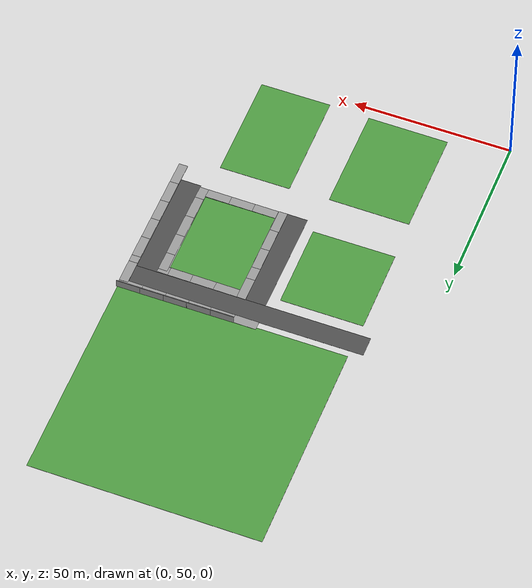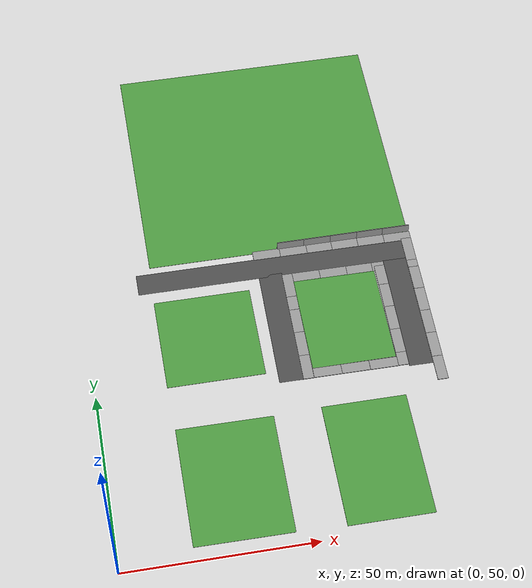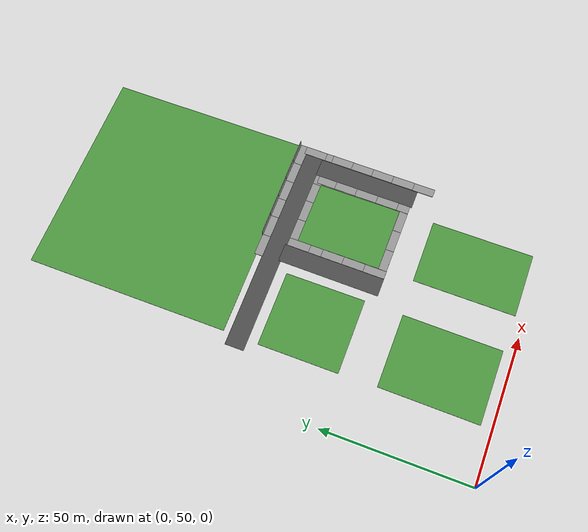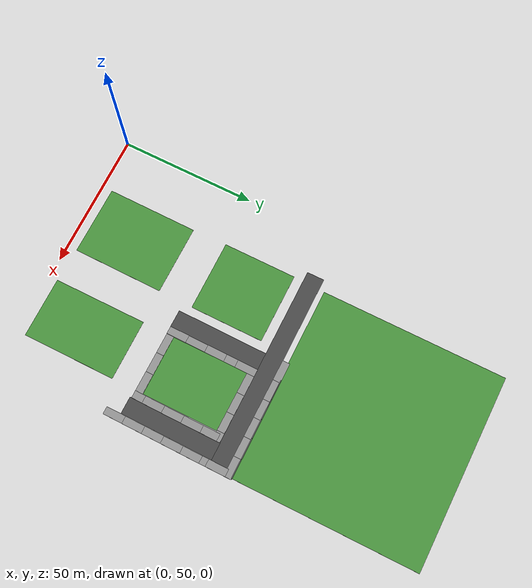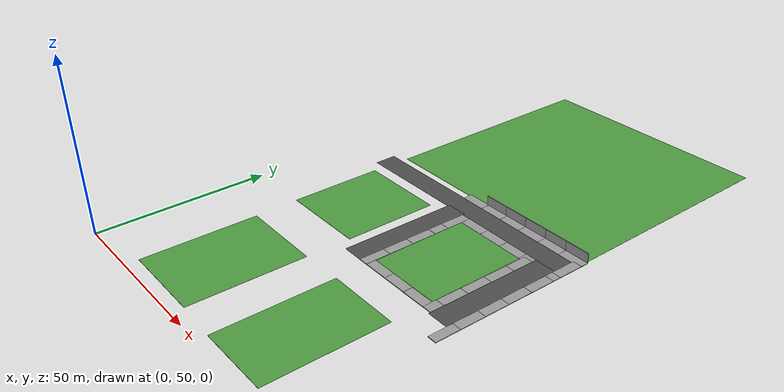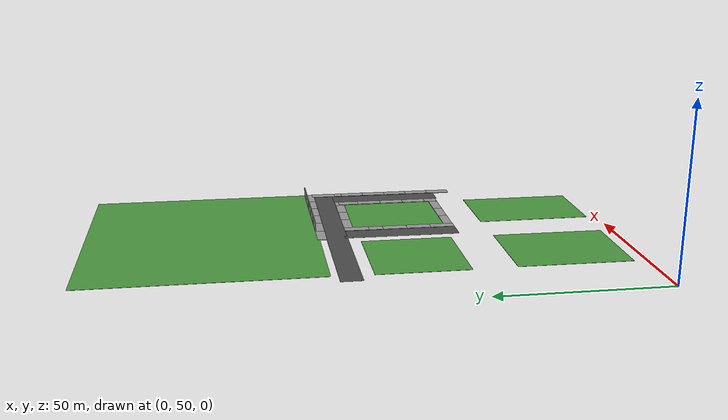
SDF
<sdf version="1.6">
 <world name="default">
  <model name="grey_wall_clone_clone_9_clone_26_clone_0_clone_2_clone_4_clone">
   <static>1</static>
   <link name="link">
    <pose>0 0 1.4 0 -0 0</pose>
    <collision name="collision"><geometry><box><size>7.5 0.2 2.8</size></box></geometry></collision>
    <visual name="visual">
     <cast_shadows>0</cast_shadows>
     <geometry><box><size>7.5 0.2 2.8</size></box></geometry>
     <material>
      <script>
       <uri>model://grey_wall/materials/scripts</uri>
       <uri>model://grey_wall/materials/textures</uri>
       <name>vrc/grey_wall</name>
      </script>
     </material>
    </visual>
   </link>
   <pose>91.2568 94.3054 -0.017166 -1.57343 0.001892 1.56332</pose>
  </model>
  <model name="grey_wall_clone_clone_9_clone_26_clone_0_clone_2_clone_4_clone_0">
   <static>1</static>
   <link name="link">
    <pose>0 0 1.4 0 -0 0</pose>
    <collision name="collision"><geometry><box><size>7.5 0.2 2.8</size></box></geometry></collision>
    <visual name="visual">
     <cast_shadows>0</cast_shadows>
     <geometry><box><size>7.5 0.2 2.8</size></box></geometry>
     <material>
      <script>
       <uri>model://grey_wall/materials/scripts</uri>
       <uri>model://grey_wall/materials/textures</uri>
       <name>vrc/grey_wall</name>
      </script>
     </material>
    </visual>
   </link>
   <pose>91.3338 101.558 -0.017166 -1.57343 0.001892 1.56332</pose>
  </model>
  <model name="grey_wall_clone_clone_9_clone_26_clone_0_clone_2_clone_4_clone_1">
   <static>1</static>
   <link name="link">
    <pose>0 0 1.4 0 -0 0</pose>
    <collision name="collision"><geometry><box><size>7.5 0.2 2.8</size></box></geometry></collision>
    <visual name="visual">
     <cast_shadows>0</cast_shadows>
     <geometry><box><size>7.5 0.2 2.8</size></box></geometry>
     <material>
      <script>
       <uri>model://grey_wall/materials/scripts</uri>
       <uri>model://grey_wall/materials/textures</uri>
       <name>vrc/grey_wall</name>
      </script>
     </material>
    </visual>
   </link>
   <pose>91.3954 109.062 -0.017166 -1.57343 0.001892 1.56332</pose>
  </model>
  <model name="grey_wall_clone_clone_9_clone_26_clone_0_clone_2_clone_4_clone_2">
   <static>1</static>
   <link name="link">
    <pose>0 0 1.4 0 -0 0</pose>
    <collision name="collision"><geometry><box><size>7.5 0.2 2.8</size></box></geometry></collision>
    <visual name="visual">
     <cast_shadows>0</cast_shadows>
     <geometry><box><size>7.5 0.2 2.8</size></box></geometry>
     <material>
      <script>
       <uri>model://grey_wall/materials/scripts</uri>
       <uri>model://grey_wall/materials/textures</uri>
       <name>vrc/grey_wall</name>
      </script>
     </material>
    </visual>
   </link>
   <pose>91.4675 116.368 -0.017166 -1.57343 0.001892 1.56332</pose>
  </model>
  <model name="grey_wall_clone_clone_9_clone_26_clone_0_clone_2_clone_4_clone_3">
   <static>1</static>
   <link name="link">
    <pose>0 0 1.4 0 -0 0</pose>
    <collision name="collision"><geometry><box><size>7.5 0.2 2.8</size></box></geometry></collision>
    <visual name="visual">
     <cast_shadows>0</cast_shadows>
     <geometry><box><size>7.5 0.2 2.8</size></box></geometry>
     <material>
      <script>
       <uri>model://grey_wall/materials/scripts</uri>
       <uri>model://grey_wall/materials/textures</uri>
       <name>vrc/grey_wall</name>
      </script>
     </material>
    </visual>
   </link>
   <pose>91.5501 123.729 -0.017166 -1.57343 0.001892 1.56332</pose>
  </model>
  <model name="grey_wall_clone_clone_9_clone_26_clone_0_clone_2_clone_4_clone_4">
   <static>1</static>
   <link name="link">
    <pose>0 0 1.4 0 -0 0</pose>
    <collision name="collision"><geometry><box><size>7.5 0.2 2.8</size></box></geometry></collision>
    <visual name="visual">
     <cast_shadows>0</cast_shadows>
     <geometry><box><size>7.5 0.2 2.8</size></box></geometry>
     <material>
      <script>
       <uri>model://grey_wall/materials/scripts</uri>
       <uri>model://grey_wall/materials/textures</uri>
       <name>vrc/grey_wall</name>
      </script>
     </material>
    </visual>
   </link>
   <pose>91.5755 131.004 -0.017166 -1.57343 0.001892 1.56332</pose>
  </model>
  <model name="grey_wall_clone_clone_9_clone_26_clone_0_clone_2_clone_4_clone_5">
   <static>1</static>
   <link name="link">
    <pose>0 0 1.4 0 -0 0</pose>
    <collision name="collision"><geometry><box><size>7.5 0.2 2.8</size></box></geometry></collision>
    <visual name="visual">
     <cast_shadows>0</cast_shadows>
     <geometry><box><size>7.5 0.2 2.8</size></box></geometry>
     <material>
      <script>
       <uri>model://grey_wall/materials/scripts</uri>
       <uri>model://grey_wall/materials/textures</uri>
       <name>vrc/grey_wall</name>
      </script>
     </material>
    </visual>
   </link>
   <pose>91.588 133.388 -0.017187 -1.57343 0.001892 1.56332</pose>
  </model>
  <model name="grey_wall_clone_clone_9_clone_26_clone_0_clone_2_clone_4_clone_2_clone_9">
   <static>1</static>
   <link name="link">
    <pose>0 0 1.4 0 -0 0</pose>
    <collision name="collision"><geometry><box><size>7.5 0.2 2.8</size></box></geometry></collision>
    <visual name="visual">
     <cast_shadows>0</cast_shadows>
     <geometry><box><size>7.5 0.2 2.8</size></box></geometry>
     <material>
      <script>
       <uri>model://grey_wall/materials/scripts</uri>
       <uri>model://grey_wall/materials/textures</uri>
       <name>vrc/grey_wall</name>
      </script>
     </material>
    </visual>
   </link>
   <pose>82.3459 126.61 -0.017166 -1.57343 0.001892 1.56332</pose>
  </model>
  <model name="grey_wall_clone_clone_9_clone_26_clone_0_clone_2_clone_4_clone_2_clone_10">
   <static>1</static>
   <link name="link">
    <pose>0 0 1.4 0 -0 0</pose>
    <collision name="collision"><geometry><box><size>7.5 0.2 2.8</size></box></geometry></collision>
    <visual name="visual">
     <cast_shadows>0</cast_shadows>
     <geometry><box><size>7.5 0.2 2.8</size></box></geometry>
     <material>
      <script>
       <uri>model://grey_wall/materials/scripts</uri>
       <uri>model://grey_wall/materials/textures</uri>
       <name>vrc/grey_wall</name>
      </script>
     </material>
    </visual>
   </link>
   <pose>82.3013 119.227 -0.017166 -1.57343 0.001892 1.56332</pose>
  </model>
  <model name="grey_wall_clone_clone_9_clone_26_clone_0_clone_2_clone_4_clone_2_clone_11">
   <static>1</static>
   <link name="link">
    <pose>0 0 1.4 0 -0 0</pose>
    <collision name="collision"><geometry><box><size>7.5 0.2 2.8</size></box></geometry></collision>
    <visual name="visual">
     <cast_shadows>0</cast_shadows>
     <geometry><box><size>7.5 0.2 2.8</size></box></geometry>
     <material>
      <script>
       <uri>model://grey_wall/materials/scripts</uri>
       <uri>model://grey_wall/materials/textures</uri>
       <name>vrc/grey_wall</name>
      </script>
     </material>
    </visual>
   </link>
   <pose>82.2316 111.762 -0.017166 -1.57343 0.001892 1.56332</pose>
  </model>
  <model name="grey_wall_clone_clone_9_clone_26_clone_0_clone_2_clone_4_clone_2_clone_12">
   <static>1</static>
   <link name="link">
    <pose>0 0 1.4 0 -0 0</pose>
    <collision name="collision"><geometry><box><size>7.5 0.2 2.8</size></box></geometry></collision>
    <visual name="visual">
     <cast_shadows>0</cast_shadows>
     <geometry><box><size>7.5 0.2 2.8</size></box></geometry>
     <material>
      <script>
       <uri>model://grey_wall/materials/scripts</uri>
       <uri>model://grey_wall/materials/textures</uri>
       <name>vrc/grey_wall</name>
      </script>
     </material>
    </visual>
   </link>
   <pose>82.1538 104.33 -0.017166 -1.57343 0.001892 1.56332</pose>
  </model>
  <model name="grey_wall_clone_clone_9_clone_26_clone_0_clone_2_clone_4_clone_2_clone_13">
   <static>1</static>
   <link name="link">
    <pose>0 0 1.4 0 -0 0</pose>
    <collision name="collision"><geometry><box><size>7.5 0.2 2.8</size></box></geometry></collision>
    <visual name="visual">
     <cast_shadows>0</cast_shadows>
     <geometry><box><size>7.5 0.2 2.8</size></box></geometry>
     <material>
      <script>
       <uri>model://grey_wall/materials/scripts</uri>
       <uri>model://grey_wall/materials/textures</uri>
       <name>vrc/grey_wall</name>
      </script>
     </material>
    </visual>
   </link>
   <pose>82.0917 100.286 -0.017166 -1.57343 0.001892 1.56332</pose>
  </model>
  <model name="grey_wall_clone_clone_9_clone_26_clone_0_clone_2_clone_4_clone_2_clone_14">
   <static>1</static>
   <link name="link">
    <pose>0 0 1.4 0 -0 0</pose>
    <collision name="collision"><geometry><box><size>7.5 0.2 2.8</size></box></geometry></collision>
    <visual name="visual">
     <cast_shadows>0</cast_shadows>
     <geometry><box><size>7.5 0.2 2.8</size></box></geometry>
     <material>
      <script>
       <uri>model://grey_wall/materials/scripts</uri>
       <uri>model://grey_wall/materials/textures</uri>
       <name>vrc/grey_wall</name>
      </script>
     </material>
    </visual>
   </link>
   <pose>56.7772 100.361 -0.017166 -1.57343 0.001892 1.56332</pose>
  </model>
  <model name="grey_wall_clone_clone_9_clone_26_clone_0_clone_2_clone_4_clone_2_clone_15">
   <static>1</static>
   <link name="link">
    <pose>0 0 1.4 0 -0 0</pose>
    <collision name="collision"><geometry><box><size>7.5 0.2 2.8</size></box></geometry></collision>
    <visual name="visual">
     <cast_shadows>0</cast_shadows>
     <geometry><box><size>7.5 0.2 2.8</size></box></geometry>
     <material>
      <script>
       <uri>model://grey_wall/materials/scripts</uri>
       <uri>model://grey_wall/materials/textures</uri>
       <name>vrc/grey_wall</name>
      </script>
     </material>
    </visual>
   </link>
   <pose>56.8465 107.672 -0.017166 -1.57343 0.001892 1.56332</pose>
  </model>
  <model name="grey_wall_clone_clone_9_clone_26_clone_0_clone_2_clone_4_clone_2_clone_16">
   <static>1</static>
   <link name="link">
    <pose>0 0 1.4 0 -0 0</pose>
    <collision name="collision"><geometry><box><size>7.5 0.2 2.8</size></box></geometry></collision>
    <visual name="visual">
     <cast_shadows>0</cast_shadows>
     <geometry><box><size>7.5 0.2 2.8</size></box></geometry>
     <material>
      <script>
       <uri>model://grey_wall/materials/scripts</uri>
       <uri>model://grey_wall/materials/textures</uri>
       <name>vrc/grey_wall</name>
      </script>
     </material>
    </visual>
   </link>
   <pose>56.8775 115.076 -0.017166 -1.57343 0.001892 1.56332</pose>
  </model>
  <model name="grey_wall_clone_clone_9_clone_26_clone_0_clone_2_clone_4_clone_2_clone_17">
   <static>1</static>
   <link name="link">
    <pose>0 0 1.4 0 -0 0</pose>
    <collision name="collision"><geometry><box><size>7.5 0.2 2.8</size></box></geometry></collision>
    <visual name="visual">
     <cast_shadows>0</cast_shadows>
     <geometry><box><size>7.5 0.2 2.8</size></box></geometry>
     <material>
      <script>
       <uri>model://grey_wall/materials/scripts</uri>
       <uri>model://grey_wall/materials/textures</uri>
       <name>vrc/grey_wall</name>
      </script>
     </material>
    </visual>
   </link>
   <pose>56.9216 122.452 -0.017166 -1.57343 0.001892 1.56332</pose>
  </model>
  <model name="grey_wall_clone_clone_9_clone_26_clone_0_clone_2_clone_4_clone_2_clone_18">
   <static>1</static>
   <link name="link">
    <pose>0 0 1.4 0 -0 0</pose>
    <collision name="collision"><geometry><box><size>7.5 0.2 2.8</size></box></geometry></collision>
    <visual name="visual">
     <cast_shadows>0</cast_shadows>
     <geometry><box><size>7.5 0.2 2.8</size></box></geometry>
     <material>
      <script>
       <uri>model://grey_wall/materials/scripts</uri>
       <uri>model://grey_wall/materials/textures</uri>
       <name>vrc/grey_wall</name>
      </script>
     </material>
    </visual>
   </link>
   <pose>56.9629 126.791 -0.017166 -1.57343 0.001892 1.56332</pose>
  </model>
  <model name="grey_wall_clone_clone_10_clone_23_clone">
   <static>1</static>
   <link name="link">
    <pose>0 0 1.4 0 -0 0</pose>
    <collision name="collision"><geometry><box><size>7.5 0.2 2.8</size></box></geometry></collision>
    <visual name="visual">
     <cast_shadows>0</cast_shadows>
     <geometry><box><size>7.5 0.2 2.8</size></box></geometry>
     <material>
      <script>
       <uri>model://grey_wall/materials/scripts</uri>
       <uri>model://grey_wall/materials/textures</uri>
       <name>vrc/grey_wall</name>
      </script>
     </material>
    </visual>
   </link>
   <pose>75.5704 99.3579 -0.013396 -1.5862 0.002658 3.13547</pose>
  </model>
  <model name="grey_wall_clone_clone_10_clone_23_clone_0">
   <static>1</static>
   <link name="link">
    <pose>0 0 1.4 0 -0 0</pose>
    <collision name="collision"><geometry><box><size>7.5 0.2 2.8</size></box></geometry></collision>
    <visual name="visual">
     <cast_shadows>0</cast_shadows>
     <geometry><box><size>7.5 0.2 2.8</size></box></geometry>
     <material>
      <script>
       <uri>model://grey_wall/materials/scripts</uri>
       <uri>model://grey_wall/materials/textures</uri>
       <name>vrc/grey_wall</name>
      </script>
     </material>
    </visual>
   </link>
   <pose>68.0582 99.4183 -0.013396 -1.5862 0.002658 3.13547</pose>
  </model>
  <model name="grey_wall_clone_clone_10_clone_23_clone_1">
   <static>1</static>
   <link name="link">
    <pose>0 0 1.4 0 -0 0</pose>
    <collision name="collision"><geometry><box><size>7.5 0.2 2.8</size></box></geometry></collision>
    <visual name="visual">
     <cast_shadows>0</cast_shadows>
     <geometry><box><size>7.5 0.2 2.8</size></box></geometry>
     <material>
      <script>
       <uri>model://grey_wall/materials/scripts</uri>
       <uri>model://grey_wall/materials/textures</uri>
       <name>vrc/grey_wall</name>
      </script>
     </material>
    </visual>
   </link>
   <pose>60.5603 99.4492 -0.013396 -1.5862 0.002658 3.13547</pose>
  </model>
  <model name="grey_wall_clone_clone_10_clone_23_clone_2">
   <static>1</static>
   <link name="link">
    <pose>0 0 1.4 0 -0 0</pose>
    <collision name="collision"><geometry><box><size>7.5 0.2 2.8</size></box></geometry></collision>
    <visual name="visual">
     <cast_shadows>0</cast_shadows>
     <geometry><box><size>7.5 0.2 2.8</size></box></geometry>
     <material>
      <script>
       <uri>model://grey_wall/materials/scripts</uri>
       <uri>model://grey_wall/materials/textures</uri>
       <name>vrc/grey_wall</name>
      </script>
     </material>
    </visual>
   </link>
   <pose>60.673 130.55 -0.010134 -1.5862 0.002658 3.13547</pose>
  </model>
  <model name="grey_wall_clone_clone_10_clone_23_clone_3">
   <static>1</static>
   <link name="link">
    <pose>0 0 1.4 0 -0 0</pose>
    <collision name="collision"><geometry><box><size>7.5 0.2 2.8</size></box></geometry></collision>
    <visual name="visual">
     <cast_shadows>0</cast_shadows>
     <geometry><box><size>7.5 0.2 2.8</size></box></geometry>
     <material>
      <script>
       <uri>model://grey_wall/materials/scripts</uri>
       <uri>model://grey_wall/materials/textures</uri>
       <name>vrc/grey_wall</name>
      </script>
     </material>
    </visual>
   </link>
   <pose>68.1196 130.503 -0.013396 -1.5862 0.002658 3.13547</pose>
  </model>
  <model name="grey_wall_clone_clone_10_clone_23_clone_4">
   <static>1</static>
   <link name="link">
    <pose>0 0 1.4 0 -0 0</pose>
    <collision name="collision"><geometry><box><size>7.5 0.2 2.8</size></box></geometry></collision>
    <visual name="visual">
     <cast_shadows>0</cast_shadows>
     <geometry><box><size>7.5 0.2 2.8</size></box></geometry>
     <material>
      <script>
       <uri>model://grey_wall/materials/scripts</uri>
       <uri>model://grey_wall/materials/textures</uri>
       <name>vrc/grey_wall</name>
      </script>
     </material>
    </visual>
   </link>
   <pose>75.1953 130.446 -0.013396 -1.5862 0.002658 3.13547</pose>
  </model>
  <model name="grey_wall_clone_clone_10_clone_23_clone_5">
   <static>1</static>
   <link name="link">
    <pose>0 0 1.4 0 -0 0</pose>
    <collision name="collision"><geometry><box><size>7.5 0.2 2.8</size></box></geometry></collision>
    <visual name="visual">
     <cast_shadows>0</cast_shadows>
     <geometry><box><size>7.5 0.2 2.8</size></box></geometry>
     <material>
      <script>
       <uri>model://grey_wall/materials/scripts</uri>
       <uri>model://grey_wall/materials/textures</uri>
       <name>vrc/grey_wall</name>
      </script>
     </material>
    </visual>
   </link>
   <pose>78.6031 130.41 -0.013396 -1.5862 0.002658 3.13547</pose>
  </model>
  <model name="grey_wall_clone_clone_10_clone_23_clone_clone_5_clone_4">
   <static>1</static>
   <link name="link">
    <pose>0 0 1.4 0 -0 0</pose>
    <collision name="collision"><geometry><box><size>7.5 0.2 2.8</size></box></geometry></collision>
    <visual name="visual">
     <cast_shadows>0</cast_shadows>
     <geometry><box><size>7.5 0.2 2.8</size></box></geometry>
     <material>
      <script>
       <uri>model://grey_wall/materials/scripts</uri>
       <uri>model://grey_wall/materials/textures</uri>
       <name>vrc/grey_wall</name>
      </script>
     </material>
    </visual>
   </link>
   <pose>87.8748 139.355 -0.013578 -1.5862 0.002658 3.13547</pose>
  </model>
  <model name="grey_wall_clone_clone_10_clone_23_clone_clone_5_clone_5">
   <static>1</static>
   <link name="link">
    <pose>0 0 1.4 0 -0 0</pose>
    <collision name="collision"><geometry><box><size>7.5 0.2 2.8</size></box></geometry></collision>
    <visual name="visual">
     <cast_shadows>0</cast_shadows>
     <geometry><box><size>7.5 0.2 2.8</size></box></geometry>
     <material>
      <script>
       <uri>model://grey_wall/materials/scripts</uri>
       <uri>model://grey_wall/materials/textures</uri>
       <name>vrc/grey_wall</name>
      </script>
     </material>
    </visual>
   </link>
   <pose>80.4043 139.422 -0.012802 -1.5862 0.002658 3.13547</pose>
  </model>
  <model name="grey_wall_clone_clone_10_clone_23_clone_clone_5_clone_6">
   <static>1</static>
   <link name="link">
    <pose>0 0 1.4 0 -0 0</pose>
    <collision name="collision"><geometry><box><size>7.5 0.2 2.8</size></box></geometry></collision>
    <visual name="visual">
     <cast_shadows>0</cast_shadows>
     <geometry><box><size>7.5 0.2 2.8</size></box></geometry>
     <material>
      <script>
       <uri>model://grey_wall/materials/scripts</uri>
       <uri>model://grey_wall/materials/textures</uri>
       <name>vrc/grey_wall</name>
      </script>
     </material>
    </visual>
   </link>
   <pose>72.9861 139.454 -0.017249 -1.5862 0.002658 3.13547</pose>
  </model>
  <model name="grey_wall_clone_clone_10_clone_23_clone_clone_5_clone_7">
   <static>1</static>
   <link name="link">
    <pose>0 0 1.4 0 -0 0</pose>
    <collision name="collision"><geometry><box><size>7.5 0.2 2.8</size></box></geometry></collision>
    <visual name="visual">
     <cast_shadows>0</cast_shadows>
     <geometry><box><size>7.5 0.2 2.8</size></box></geometry>
     <material>
      <script>
       <uri>model://grey_wall/materials/scripts</uri>
       <uri>model://grey_wall/materials/textures</uri>
       <name>vrc/grey_wall</name>
      </script>
     </material>
    </visual>
   </link>
   <pose>65.7098 139.495 -0.016639 -1.5862 0.002658 3.13547</pose>
  </model>
  <model name="grey_wall_clone_clone_10_clone_23_clone_clone_5_clone_8">
   <static>1</static>
   <link name="link">
    <pose>0 0 1.4 0 -0 0</pose>
    <collision name="collision"><geometry><box><size>7.5 0.2 2.8</size></box></geometry></collision>
    <visual name="visual">
     <cast_shadows>0</cast_shadows>
     <geometry><box><size>7.5 0.2 2.8</size></box></geometry>
     <material>
      <script>
       <uri>model://grey_wall/materials/scripts</uri>
       <uri>model://grey_wall/materials/textures</uri>
       <name>vrc/grey_wall</name>
      </script>
     </material>
    </visual>
   </link>
   <pose>58.6986 139.529 -0.016394 -1.5862 0.002658 3.13547</pose>
  </model>
  <model name="grey_wall_clone_clone_10_clone_23_clone_clone_5_clone_9">
   <static>1</static>
   <link name="link">
    <pose>0 0 1.4 0 -0 0</pose>
    <collision name="collision"><geometry><box><size>7.5 0.2 2.8</size></box></geometry></collision>
    <visual name="visual">
     <cast_shadows>0</cast_shadows>
     <geometry><box><size>7.5 0.2 2.8</size></box></geometry>
     <material>
      <script>
       <uri>model://grey_wall/materials/scripts</uri>
       <uri>model://grey_wall/materials/textures</uri>
       <name>vrc/grey_wall</name>
      </script>
     </material>
    </visual>
   </link>
   <pose>51.2436 139.554 -0.016636 -1.5862 0.002658 3.13547</pose>
  </model>
  <model name="Road_clone_1">
   <static>1</static>
   <link name="link_0">
    <inertial>
     <mass>3902.93</mass>
     <inertia><ixx>13288.4</ixx><ixy>0</ixy><ixz>0</ixz><iyy>107351</iyy><iyz>0</iyz><izz>120639</izz></inertia>
    </inertial>
    <gravity>0</gravity>
    <self_collide>1</self_collide>
    <visual name="visual">
     <geometry><box><size>76.1581 6.39189 0.01701</size></box></geometry>
     <material>
      <lighting>1</lighting>
      <script><uri>file://media/materials/scripts/gazebo.material</uri><name>Gazebo/Road</name></script>
      <shader type="pixel"><normal_map>__default__</normal_map></shader>
      <ambient>0.1 0.1 0.1 1</ambient>
      <diffuse>0.8 0.8 0.8 1</diffuse>
      <specular>0.01 0.01 0.01 1</specular>
      <emissive>0 0 0 1</emissive>
     </material>
    </visual>
    <collision name="collision">
     <geometry><box><size>76.1581 6.39189 0.01701</size></box></geometry>
     <surface>
      <friction>
       <ode><mu>1</mu><mu2>1</mu2><fdir1>0 0 0</fdir1><slip1>0</slip1><slip2>0</slip2></ode>
       <torsional>
        <coefficient>1</coefficient>
        <patch_radius>0</patch_radius>
        <surface_radius>0</surface_radius>
        <use_patch_radius>1</use_patch_radius>
        <ode><slip>0</slip></ode>
       </torsional>
      </friction>
      <bounce><restitution_coefficient>0</restitution_coefficient><threshold>1e+06</threshold></bounce>
      <contact>
       <collide_without_contact>0</collide_without_contact>
       <collide_without_contact_bitmask>1</collide_without_contact_bitmask>
       <collide_bitmask>1</collide_bitmask>
       <ode>
        <soft_cfm>0</soft_cfm>
        <soft_erp>0.2</soft_erp>
        <kp>1e+13</kp>
        <kd>1</kd>
        <max_vel>0.01</max_vel>
        <min_depth>0</min_depth>
       </ode>
       <bullet>
        <split_impulse>1</split_impulse>
        <split_impulse_penetration_threshold>-0.01</split_impulse_penetration_threshold>
        <soft_cfm>0</soft_cfm>
        <soft_erp>0.2</soft_erp>
        <kp>1e+13</kp>
        <kd>1</kd>
       </bullet>
      </contact>
     </surface>
    </collision>
   </link>
   <static>0</static>
   <pose>53.037 133.691 0 0 -0 0</pose>
  </model>
  <model name="Road_0_clone_0_clone_0_clone">
   <static>1</static>
   <link name="link_0">
    <inertial>
     <mass>3902.93</mass>
     <inertia><ixx>13288.4</ixx><ixy>0</ixy><ixz>0</ixz><iyy>107351</iyy><iyz>0</iyz><izz>120639</izz></inertia>
    </inertial>
    <gravity>0</gravity>
    <self_collide>1</self_collide>
    <visual name="visual">
     <geometry><box><size>34.6189 6.39189 0.01701</size></box></geometry>
     <material>
      <lighting>1</lighting>
      <script><uri>file://media/materials/scripts/gazebo.material</uri><name>Gazebo/Road</name></script>
      <shader type="pixel"><normal_map>__default__</normal_map></shader>
      <ambient>0.1 0.1 0.1 1</ambient>
      <diffuse>0.8 0.8 0.8 1</diffuse>
      <specular>0.01 0.01 0.01 1</specular>
      <emissive>0 0 0 1</emissive>
     </material>
    </visual>
    <collision name="collision">
     <geometry><box><size>34.6189 6.39189 0.01701</size></box></geometry>
     <surface>
      <friction>
       <ode><mu>1</mu><mu2>1</mu2><fdir1>0 0 0</fdir1><slip1>0</slip1><slip2>0</slip2></ode>
       <torsional>
        <coefficient>1</coefficient>
        <patch_radius>0</patch_radius>
        <surface_radius>0</surface_radius>
        <use_patch_radius>1</use_patch_radius>
        <ode><slip>0</slip></ode>
       </torsional>
      </friction>
      <bounce><restitution_coefficient>0</restitution_coefficient><threshold>1e+06</threshold></bounce>
      <contact>
       <collide_without_contact>0</collide_without_contact>
       <collide_without_contact_bitmask>1</collide_without_contact_bitmask>
       <collide_bitmask>1</collide_bitmask>
       <ode>
        <soft_cfm>0</soft_cfm>
        <soft_erp>0.2</soft_erp>
        <kp>1e+13</kp>
        <kd>1</kd>
        <max_vel>0.01</max_vel>
        <min_depth>0</min_depth>
       </ode>
       <bullet>
        <split_impulse>1</split_impulse>
        <split_impulse_penetration_threshold>-0.01</split_impulse_penetration_threshold>
        <soft_cfm>0</soft_cfm>
        <soft_erp>0.2</soft_erp>
        <kp>1e+13</kp>
        <kd>1</kd>
       </bullet>
      </contact>
     </surface>
    </collision>
   </link>
   <static>0</static>
   <pose>85.3387 113.269 0 0 0 -1.57903</pose>
  </model>
  <model name="Road_0_clone_0_clone_0_clone_clone">
   <static>1</static>
   <link name="link_0">
    <inertial>
     <mass>3902.93</mass>
     <inertia><ixx>13288.4</ixx><ixy>0</ixy><ixz>0</ixz><iyy>107351</iyy><iyz>0</iyz><izz>120639</izz></inertia>
    </inertial>
    <gravity>0</gravity>
    <self_collide>1</self_collide>
    <visual name="visual">
     <geometry><box><size>34.6189 6.39189 0.01701</size></box></geometry>
     <material>
      <lighting>1</lighting>
      <script><uri>file://media/materials/scripts/gazebo.material</uri><name>Gazebo/Road</name></script>
      <shader type="pixel"><normal_map>__default__</normal_map></shader>
      <ambient>0.1 0.1 0.1 1</ambient>
      <diffuse>0.8 0.8 0.8 1</diffuse>
      <specular>0.01 0.01 0.01 1</specular>
      <emissive>0 0 0 1</emissive>
     </material>
    </visual>
    <collision name="collision">
     <geometry><box><size>34.6189 6.39189 0.01701</size></box></geometry>
     <surface>
      <friction>
       <ode><mu>1</mu><mu2>1</mu2><fdir1>0 0 0</fdir1><slip1>0</slip1><slip2>0</slip2></ode>
       <torsional>
        <coefficient>1</coefficient>
        <patch_radius>0</patch_radius>
        <surface_radius>0</surface_radius>
        <use_patch_radius>1</use_patch_radius>
        <ode><slip>0</slip></ode>
       </torsional>
      </friction>
      <bounce><restitution_coefficient>0</restitution_coefficient><threshold>1e+06</threshold></bounce>
      <contact>
       <collide_without_contact>0</collide_without_contact>
       <collide_without_contact_bitmask>1</collide_without_contact_bitmask>
       <collide_bitmask>1</collide_bitmask>
       <ode>
        <soft_cfm>0</soft_cfm>
        <soft_erp>0.2</soft_erp>
        <kp>1e+13</kp>
        <kd>1</kd>
        <max_vel>0.01</max_vel>
        <min_depth>0</min_depth>
       </ode>
       <bullet>
        <split_impulse>1</split_impulse>
        <split_impulse_penetration_threshold>-0.01</split_impulse_penetration_threshold>
        <soft_cfm>0</soft_cfm>
        <soft_erp>0.2</soft_erp>
        <kp>1e+13</kp>
        <kd>1</kd>
       </bullet>
      </contact>
     </surface>
    </collision>
   </link>
   <static>0</static>
   <pose>50.941 113.918 0 0 0 -1.57903</pose>
  </model>
  <model name="Grass_cube">
   <link name="link_0">
    <inertial>
     <mass>57.0556</mass>
     <inertia><ixx>2365.49</ixx><ixy>0</ixy><ixz>0</ixz><iyy>3804.86</iyy><iyz>0</iyz><izz>6170.31</izz></inertia>
    </inertial>
    <pose>-61.5077 -41.1774 0 0 0 -1.57123</pose>
    <gravity>0</gravity>
    <self_collide>1</self_collide>
    <visual name="visual">
     <geometry><box><size>28.2885 22.3049 0.068473</size></box></geometry>
     <material>
      <lighting>1</lighting>
      <script><uri>file://media/materials/scripts/gazebo.material</uri><name>Gazebo/Grass</name></script>
      <shader type="vertex"><normal_map>__default__</normal_map></shader>
      <ambient>0.3 0.3 0.3 1</ambient>
      <diffuse>0.7 0.7 0.7 1</diffuse>
      <specular>0.01 0.01 0.01 1</specular>
      <emissive>0 0 0 1</emissive>
     </material>
    </visual>
    <collision name="collision_0">
     <geometry><box><size>28.2885 22.3049 0.068473</size></box></geometry>
     <surface>
      <friction>
       <ode><mu>1</mu><mu2>1</mu2><fdir1>0 0 0</fdir1><slip1>0</slip1><slip2>0</slip2></ode>
       <torsional>
        <coefficient>1</coefficient>
        <patch_radius>0</patch_radius>
        <surface_radius>0</surface_radius>
        <use_patch_radius>1</use_patch_radius>
        <ode><slip>0</slip></ode>
       </torsional>
      </friction>
      <bounce><restitution_coefficient>0</restitution_coefficient><threshold>1e+06</threshold></bounce>
      <contact>
       <collide_without_contact>0</collide_without_contact>
       <collide_without_contact_bitmask>1</collide_without_contact_bitmask>
       <collide_bitmask>1</collide_bitmask>
       <ode>
        <soft_cfm>0</soft_cfm>
        <soft_erp>0.2</soft_erp>
        <kp>1e+13</kp>
        <kd>1</kd>
        <max_vel>0.01</max_vel>
        <min_depth>0</min_depth>
       </ode>
       <bullet>
        <split_impulse>1</split_impulse>
        <split_impulse_penetration_threshold>-0.01</split_impulse_penetration_threshold>
        <soft_cfm>0</soft_cfm>
        <soft_erp>0.2</soft_erp>
        <kp>1e+13</kp>
        <kd>1</kd>
       </bullet>
      </contact>
     </surface>
    </collision>
   </link>
   <static>1</static>
   <pose>129.574 154.797 0 0 -0 0</pose>
  </model>
  <model name="Grass_cube_1">
   <link name="link_0">
    <inertial>
     <mass>69.4557</mass>
     <inertia><ixx>2879.59</ixx><ixy>0</ixy><ixz>0</ixz><iyy>6863.84</iyy><iyz>0</iyz><izz>9743.38</izz></inertia>
    </inertial>
    <pose>-61.5077 -41.1774 0 0 0 -1.57123</pose>
    <gravity>0</gravity>
    <self_collide>1</self_collide>
    <visual name="visual">
     <geometry><box><size>34.4365 22.3049 0.068473</size></box></geometry>
     <material>
      <lighting>1</lighting>
      <script><uri>file://media/materials/scripts/gazebo.material</uri><name>Gazebo/Grass</name></script>
      <shader type="vertex"><normal_map>__default__</normal_map></shader>
      <ambient>0.3 0.3 0.3 1</ambient>
      <diffuse>0.7 0.7 0.7 1</diffuse>
      <specular>0.01 0.01 0.01 1</specular>
      <emissive>0 0 0 1</emissive>
     </material>
    </visual>
    <collision name="collision_0">
     <geometry><box><size>34.4365 22.3049 0.068473</size></box></geometry>
     <surface>
      <friction>
       <ode><mu>1</mu><mu2>1</mu2><fdir1>0 0 0</fdir1><slip1>0</slip1><slip2>0</slip2></ode>
       <torsional>
        <coefficient>1</coefficient>
        <patch_radius>0</patch_radius>
        <surface_radius>0</surface_radius>
        <use_patch_radius>1</use_patch_radius>
        <ode><slip>0</slip></ode>
       </torsional>
      </friction>
      <bounce><restitution_coefficient>0</restitution_coefficient><threshold>1e+06</threshold></bounce>
      <contact>
       <collide_without_contact>0</collide_without_contact>
       <collide_without_contact_bitmask>1</collide_without_contact_bitmask>
       <collide_bitmask>1</collide_bitmask>
       <ode>
        <soft_cfm>0</soft_cfm>
        <soft_erp>0.2</soft_erp>
        <kp>1e+13</kp>
        <kd>1</kd>
        <max_vel>0.01</max_vel>
        <min_depth>0</min_depth>
       </ode>
       <bullet>
        <split_impulse>1</split_impulse>
        <split_impulse_penetration_threshold>-0.01</split_impulse_penetration_threshold>
        <soft_cfm>0</soft_cfm>
        <soft_erp>0.2</soft_erp>
        <kp>1e+13</kp>
        <kd>1</kd>
       </bullet>
      </contact>
     </surface>
    </collision>
   </link>
   <static>1</static>
   <pose>129.549 111.449 0 0 -0 0</pose>
  </model>
  <model name="Grass_cube2">
   <link name="link_0">
    <inertial>
     <mass>76.8869</mass>
     <inertia><ixx>4146.96</ixx><ixy>0</ixy><ixz>0</ixz><iyy>7157.23</iyy><iyz>0</iyz><izz>11304.1</izz></inertia>
    </inertial>
    <pose>-61.5361 -41.0715 0 0 0 -1.57748</pose>
    <gravity>0</gravity>
    <self_collide>1</self_collide>
    <visual name="visual">
     <geometry><box><size>33.4223 25.4406 0.068473</size></box></geometry>
     <material>
      <lighting>1</lighting>
      <script><uri>file://media/materials/scripts/gazebo.material</uri><name>Gazebo/Grass</name></script>
      <shader type="vertex"><normal_map>__default__</normal_map></shader>
      <ambient>0.3 0.3 0.3 1</ambient>
      <diffuse>0.7 0.7 0.7 1</diffuse>
      <specular>0.01 0.01 0.01 1</specular>
      <emissive>0 0 0 1</emissive>
     </material>
    </visual>
    <collision name="collision_0">
     <geometry><box><size>33.4223 25.4406 0.068473</size></box></geometry>
     <surface>
      <friction>
       <ode><mu>1</mu><mu2>1</mu2><fdir1>0 0 0</fdir1><slip1>0</slip1><slip2>0</slip2></ode>
       <torsional>
        <coefficient>1</coefficient>
        <patch_radius>0</patch_radius>
        <surface_radius>0</surface_radius>
        <use_patch_radius>1</use_patch_radius>
        <ode><slip>0</slip></ode>
       </torsional>
      </friction>
      <bounce><restitution_coefficient>0</restitution_coefficient><threshold>1e+06</threshold></bounce>
      <contact>
       <collide_without_contact>0</collide_without_contact>
       <collide_without_contact_bitmask>1</collide_without_contact_bitmask>
       <collide_bitmask>1</collide_bitmask>
       <ode>
        <soft_cfm>0</soft_cfm>
        <soft_erp>0.2</soft_erp>
        <kp>1e+13</kp>
        <kd>1</kd>
        <max_vel>0.01</max_vel>
        <min_depth>0</min_depth>
       </ode>
       <bullet>
        <split_impulse>1</split_impulse>
        <split_impulse_penetration_threshold>-0.01</split_impulse_penetration_threshold>
        <soft_cfm>0</soft_cfm>
        <soft_erp>0.2</soft_erp>
        <kp>1e+13</kp>
        <kd>1</kd>
       </bullet>
      </contact>
     </surface>
    </collision>
   </link>
   <static>1</static>
   <pose>93.0747 111.456 0 0 -0 0</pose>
  </model>
  <model name="Grass_cube3">
   <link name="link_0">
    <inertial>
     <mass>63.612</mass>
     <inertia><ixx>3576.46</ixx><ixy>0</ixy><ixz>0</ixz><iyy>3888.41</iyy><iyz>0</iyz><izz>7464.81</izz></inertia>
    </inertial>
    <pose>-61.4531 -41.3757 0 0 0 -1.57123</pose>
    <gravity>0</gravity>
    <self_collide>1</self_collide>
    <visual name="visual">
     <geometry><box><size>27.0835 25.9744 0.068473</size></box></geometry>
     <material>
      <lighting>1</lighting>
      <script><uri>file://media/materials/scripts/gazebo.material</uri><name>Gazebo/Grass</name></script>
      <shader type="vertex"><normal_map>__default__</normal_map></shader>
      <ambient>0.3 0.3 0.3 1</ambient>
      <diffuse>0.7 0.7 0.7 1</diffuse>
      <specular>0.01 0.01 0.01 1</specular>
      <emissive>0 0 0 1</emissive>
     </material>
    </visual>
    <collision name="collision_0">
     <geometry><box><size>27.0835 25.9744 0.068473</size></box></geometry>
     <surface>
      <friction>
       <ode><mu>1</mu><mu2>1</mu2><fdir1>0 0 0</fdir1><slip1>0</slip1><slip2>0</slip2></ode>
       <torsional>
        <coefficient>1</coefficient>
        <patch_radius>0</patch_radius>
        <surface_radius>0</surface_radius>
        <use_patch_radius>1</use_patch_radius>
        <ode><slip>0</slip></ode>
       </torsional>
      </friction>
      <bounce><restitution_coefficient>0</restitution_coefficient><threshold>1e+06</threshold></bounce>
      <contact>
       <collide_without_contact>0</collide_without_contact>
       <collide_without_contact_bitmask>1</collide_without_contact_bitmask>
       <collide_bitmask>1</collide_bitmask>
       <ode>
        <soft_cfm>0</soft_cfm>
        <soft_erp>0.2</soft_erp>
        <kp>1e+13</kp>
        <kd>1</kd>
        <max_vel>0.01</max_vel>
        <min_depth>0</min_depth>
       </ode>
       <bullet>
        <split_impulse>1</split_impulse>
        <split_impulse_penetration_threshold>-0.01</split_impulse_penetration_threshold>
        <soft_cfm>0</soft_cfm>
        <soft_erp>0.2</soft_erp>
        <kp>1e+13</kp>
        <kd>1</kd>
       </bullet>
      </contact>
     </surface>
    </collision>
   </link>
   <static>1</static>
   <pose>93.0472 154.895 0 0 -0 0</pose>
  </model>
  <model name="Grass_cube4">
   <link name="link_0">
    <inertial>
     <mass>448.94</mass>
     <inertia><ixx>194971</ixx><ixy>0</ixy><ixz>0</ixz><iyy>176948</iyy><iyz>0</iyz><izz>371919</izz></inertia>
    </inertial>
    <pose>-63.1992 -45.2935 -0 0 0 -1.57123</pose>
    <gravity>0</gravity>
    <self_collide>1</self_collide>
    <visual name="visual">
     <geometry><box><size>68.7731 72.1907 0.068473</size></box></geometry>
     <material>
      <lighting>1</lighting>
      <script><uri>file://media/materials/scripts/gazebo.material</uri><name>Gazebo/Grass</name></script>
      <shader type="vertex"><normal_map>__default__</normal_map></shader>
      <ambient>0.3 0.3 0.3 1</ambient>
      <diffuse>0.7 0.7 0.7 1</diffuse>
      <specular>0.01 0.01 0.01 1</specular>
      <emissive>0 0 0 1</emissive>
     </material>
    </visual>
    <collision name="collision_0">
     <geometry><box><size>68.7731 72.1907 0.068473</size></box></geometry>
     <surface>
      <friction>
       <ode><mu>1</mu><mu2>1</mu2><fdir1>0 0 0</fdir1><slip1>0</slip1><slip2>0</slip2></ode>
       <torsional>
        <coefficient>1</coefficient>
        <patch_radius>0</patch_radius>
        <surface_radius>0</surface_radius>
        <use_patch_radius>1</use_patch_radius>
        <ode><slip>0</slip></ode>
       </torsional>
      </friction>
      <bounce><restitution_coefficient>0</restitution_coefficient><threshold>1e+06</threshold></bounce>
      <contact>
       <collide_without_contact>0</collide_without_contact>
       <collide_without_contact_bitmask>1</collide_without_contact_bitmask>
       <collide_bitmask>1</collide_bitmask>
       <ode>
        <soft_cfm>0</soft_cfm>
        <soft_erp>0.2</soft_erp>
        <kp>1e+13</kp>
        <kd>1</kd>
        <max_vel>0.01</max_vel>
        <min_depth>0</min_depth>
       </ode>
       <bullet>
        <split_impulse>1</split_impulse>
        <split_impulse_penetration_threshold>-0.01</split_impulse_penetration_threshold>
        <soft_cfm>0</soft_cfm>
        <soft_erp>0.2</soft_erp>
        <kp>1e+13</kp>
        <kd>1</kd>
       </bullet>
      </contact>
     </surface>
    </collision>
   </link>
   <static>1</static>
   <pose>118.27 218.571 0 0 -0 0</pose>
  </model>
  <model name="grey_wall">
   <static>1</static>
   <link name="link">
    <pose>0 0 1.4 0 -0 0</pose>
    <collision name="collision"><geometry><box><size>7.5 0.2 2.8</size></box></geometry></collision>
    <visual name="visual">
     <cast_shadows>0</cast_shadows>
     <geometry><box><size>7.5 0.2 2.8</size></box></geometry>
     <material>
      <script>
       <uri>model://grey_wall/materials/scripts</uri>
       <uri>model://grey_wall/materials/textures</uri>
       <name>vrc/grey_wall</name>
      </script>
     </material>
    </visual>
   </link>
   <pose>87.7302 139.509 0 0 -0 0</pose>
  </model>
  <model name="grey_wall_clone_0">
   <static>1</static>
   <link name="link">
    <pose>0 0 1.4 0 -0 0</pose>
    <collision name="collision"><geometry><box><size>7.5 0.2 2.8</size></box></geometry></collision>
    <visual name="visual">
     <cast_shadows>0</cast_shadows>
     <geometry><box><size>7.5 0.2 2.8</size></box></geometry>
     <material>
      <script>
       <uri>model://grey_wall/materials/scripts</uri>
       <uri>model://grey_wall/materials/textures</uri>
       <name>vrc/grey_wall</name>
      </script>
     </material>
    </visual>
   </link>
   <pose>80.309 139.539 0 0 -0 0</pose>
  </model>
  <model name="grey_wall_clone_1">
   <static>1</static>
   <link name="link">
    <pose>0 0 1.4 0 -0 0</pose>
    <collision name="collision"><geometry><box><size>7.5 0.2 2.8</size></box></geometry></collision>
    <visual name="visual">
     <cast_shadows>0</cast_shadows>
     <geometry><box><size>7.5 0.2 2.8</size></box></geometry>
     <material>
      <script>
       <uri>model://grey_wall/materials/scripts</uri>
       <uri>model://grey_wall/materials/textures</uri>
       <name>vrc/grey_wall</name>
      </script>
     </material>
    </visual>
   </link>
   <pose>73 139.519 0 0 -0 0</pose>
  </model>
  <model name="grey_wall_clone_2">
   <static>1</static>
   <link name="link">
    <pose>0 0 1.4 0 -0 0</pose>
    <collision name="collision"><geometry><box><size>7.5 0.2 2.8</size></box></geometry></collision>
    <visual name="visual">
     <cast_shadows>0</cast_shadows>
     <geometry><box><size>7.5 0.2 2.8</size></box></geometry>
     <material>
      <script>
       <uri>model://grey_wall/materials/scripts</uri>
       <uri>model://grey_wall/materials/textures</uri>
       <name>vrc/grey_wall</name>
      </script>
     </material>
    </visual>
   </link>
   <pose>65.5343 139.502 0 0 -0 0</pose>
  </model>
  <model name="grey_wall_clone_3">
   <static>1</static>
   <link name="link">
    <pose>0 0 1.4 0 -0 0</pose>
    <collision name="collision"><geometry><box><size>7.5 0.2 2.8</size></box></geometry></collision>
    <visual name="visual">
     <cast_shadows>0</cast_shadows>
     <geometry><box><size>7.5 0.2 2.8</size></box></geometry>
     <material>
      <script>
       <uri>model://grey_wall/materials/scripts</uri>
       <uri>model://grey_wall/materials/textures</uri>
       <name>vrc/grey_wall</name>
      </script>
     </material>
    </visual>
   </link>
   <pose>58.1826 139.491 0 0 -0 0</pose>
  </model>
 </world>
</sdf>
